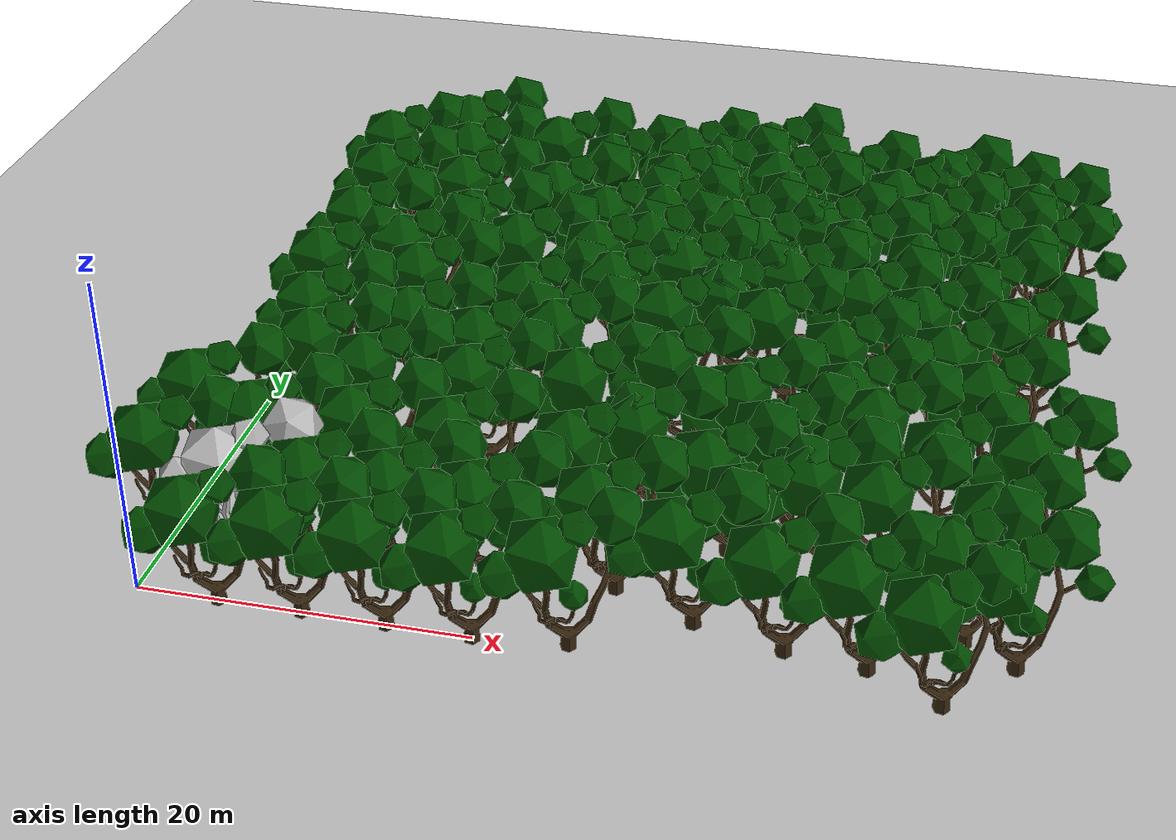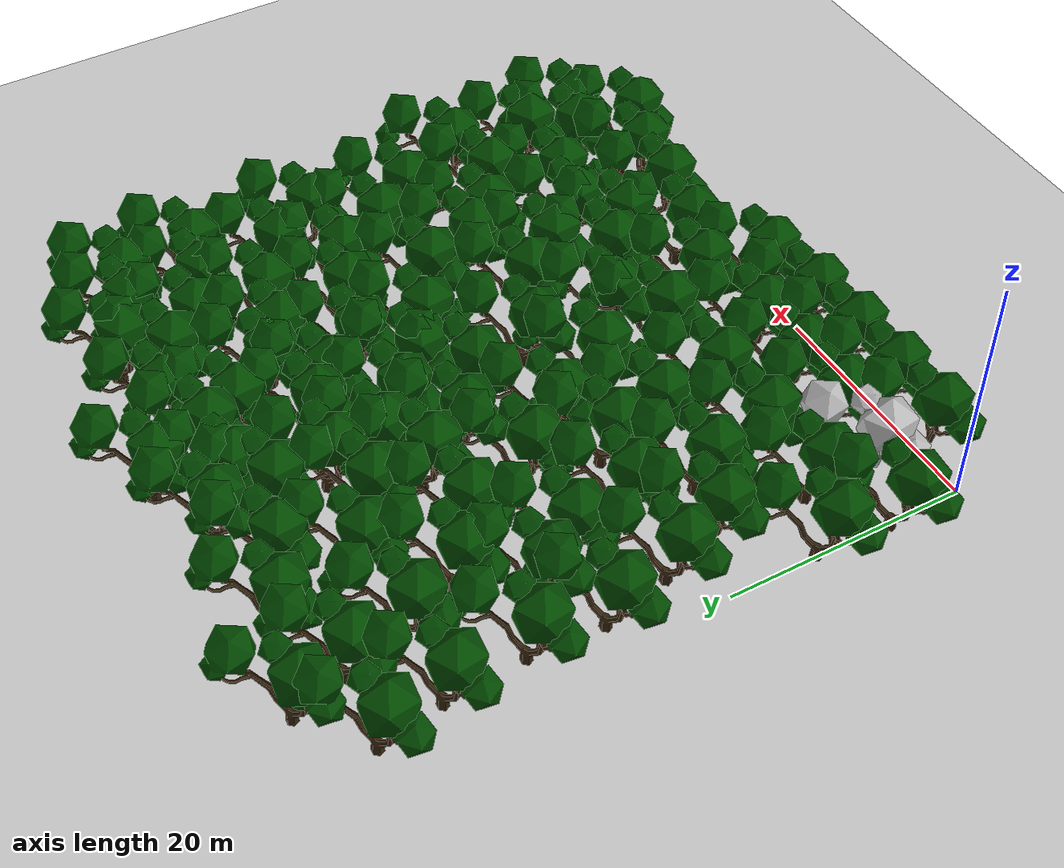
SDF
<sdf version="1.7">
 <world name="default">
  <include><uri>model://ground_plane</uri></include>
  <include><uri>model://sun</uri></include>
  <scene><ambient>0.5 0.5 0.5 0.5</ambient><shadows>0</shadows></scene>
  <model name="tree1">
   <pose>5 0 0 0 -0 0</pose>
   <static>1</static>
   <link name="body">
    <visual name="visual"><geometry><mesh><uri>file://greentree2.dae</uri></mesh></geometry></visual>
   </link>
  </model>
  <model name="tree2">
   <pose>10 0 0 0 -0 0</pose>
   <static>1</static>
   <link name="body">
    <visual name="visual"><geometry><mesh><uri>file://greentree2.dae</uri></mesh></geometry></visual>
   </link>
  </model>
  <model name="tree3">
   <pose>15 0 0 0 -0 0</pose>
   <static>1</static>
   <link name="body">
    <visual name="visual"><geometry><mesh><uri>file://greentree2.dae</uri></mesh></geometry></visual>
   </link>
  </model>
  <model name="tree4">
   <pose>20 0 0 0 -0 0</pose>
   <static>1</static>
   <link name="body">
    <visual name="visual"><geometry><mesh><uri>file://greentree2.dae</uri></mesh></geometry></visual>
   </link>
  </model>
  <model name="tree5">
   <pose>20 5 0 0 -0 0</pose>
   <static>1</static>
   <link name="body">
    <visual name="visual"><geometry><mesh><uri>file://greentree2.dae</uri></mesh></geometry></visual>
   </link>
  </model>
  <model name="tree6">
   <pose>15 5 0 0 -0 0</pose>
   <static>1</static>
   <link name="body">
    <visual name="visual"><geometry><mesh><uri>file://greentree2.dae</uri></mesh></geometry></visual>
   </link>
  </model>
  <model name="tree7">
   <pose>10 5 0 0 -0 0</pose>
   <static>1</static>
   <link name="body">
    <visual name="visual"><geometry><mesh><uri>file://greentree2.dae</uri></mesh></geometry></visual>
   </link>
  </model>
  <model name="tree8">
   <pose>5 5 0 0 -0 0</pose>
   <static>1</static>
   <link name="body">
    <visual name="visual"><geometry><mesh><uri>file://redtree2.dae</uri></mesh></geometry></visual>
   </link>
  </model>
  <gravity>0 0 -9.8</gravity>
  <magnetic_field>6e-06 2.3e-05 -4.2e-05</magnetic_field>
  <atmosphere type="adiabatic"/>
  <physics type="ode">
   <max_step_size>0.001</max_step_size>
   <real_time_factor>1</real_time_factor>
   <real_time_update_rate>1000</real_time_update_rate>
  </physics>
  <scene><ambient>0.4 0.4 0.4 1</ambient><background>0.7 0.7 0.7 1</background><shadows>1</shadows></scene>
  <spherical_coordinates>
   <surface_model>EARTH_WGS84</surface_model>
   <latitude_deg>0</latitude_deg>
   <longitude_deg>0</longitude_deg>
   <elevation>0</elevation>
   <heading_deg>0</heading_deg>
  </spherical_coordinates>
  <model name="tree1_clone">
   <pose>4.97058 10.0834 0 0 -0 0</pose>
   <static>1</static>
   <link name="body">
    <visual name="visual"><geometry><mesh><uri>file://greentree2.dae</uri></mesh></geometry></visual>
   </link>
  </model>
  <model name="tree1_clone_0">
   <pose>-0.170607 6.26084 0 0 -0 0</pose>
   <static>1</static>
   <link name="body">
    <visual name="visual"><geometry><mesh><uri>file://greentree2.dae</uri></mesh></geometry></visual>
   </link>
  </model>
  <model name="tree1_clone_1">
   <pose>0.149939 12.5466 0 0 -0 0</pose>
   <static>1</static>
   <link name="body">
    <visual name="visual"><geometry><mesh><uri>file://greentree2.dae</uri></mesh></geometry></visual>
   </link>
  </model>
  <model name="tree1_clone_2">
   <pose>10.8984 10.9448 0 0 -0 0</pose>
   <static>1</static>
   <link name="body">
    <visual name="visual"><geometry><mesh><uri>file://greentree2.dae</uri></mesh></geometry></visual>
   </link>
  </model>
  <model name="tree1_clone_3">
   <pose>16.7394 11.0248 0 0 -0 0</pose>
   <static>1</static>
   <link name="body">
    <visual name="visual"><geometry><mesh><uri>file://greentree2.dae</uri></mesh></geometry></visual>
   </link>
  </model>
  <model name="tree1_clone_4">
   <pose>9.60075 16.6803 0 0 -0 0</pose>
   <static>1</static>
   <link name="body">
    <visual name="visual"><geometry><mesh><uri>file://greentree2.dae</uri></mesh></geometry></visual>
   </link>
  </model>
  <model name="tree1_clone_5">
   <pose>5.26035 18.7754 0 0 -0 0</pose>
   <static>1</static>
   <link name="body">
    <visual name="visual"><geometry><mesh><uri>file://greentree2.dae</uri></mesh></geometry></visual>
   </link>
  </model>
  <model name="tree1_clone_6">
   <pose>3.54848 23.077 0 0 -0 0</pose>
   <static>1</static>
   <link name="body">
    <visual name="visual"><geometry><mesh><uri>file://greentree2.dae</uri></mesh></geometry></visual>
   </link>
  </model>
  <model name="tree1_clone_7">
   <pose>16.0641 16.8479 0 0 -0 0</pose>
   <static>1</static>
   <link name="body">
    <visual name="visual"><geometry><mesh><uri>file://greentree2.dae</uri></mesh></geometry></visual>
   </link>
  </model>
  <model name="tree1_clone_8">
   <pose>2.13951 28.8957 0 0 -0 0</pose>
   <static>1</static>
   <link name="body">
    <visual name="visual"><geometry><mesh><uri>file://greentree2.dae</uri></mesh></geometry></visual>
   </link>
  </model>
  <model name="tree1_clone_9">
   <pose>10.4264 22.7347 0 0 -0 0</pose>
   <static>1</static>
   <link name="body">
    <visual name="visual"><geometry><mesh><uri>file://greentree2.dae</uri></mesh></geometry></visual>
   </link>
  </model>
  <model name="tree1_clone_10">
   <pose>9.14659 28.3415 0 0 -0 0</pose>
   <static>1</static>
   <link name="body">
    <visual name="visual"><geometry><mesh><uri>file://greentree2.dae</uri></mesh></geometry></visual>
   </link>
  </model>
  <model name="tree1_clone_11">
   <pose>6.80077 31.8278 0 0 -0 0</pose>
   <static>1</static>
   <link name="body">
    <visual name="visual"><geometry><mesh><uri>file://greentree2.dae</uri></mesh></geometry></visual>
   </link>
  </model>
  <model name="tree1_clone_12">
   <pose>2.414 35.0456 0 0 -0 0</pose>
   <static>1</static>
   <link name="body">
    <visual name="visual"><geometry><mesh><uri>file://greentree2.dae</uri></mesh></geometry></visual>
   </link>
  </model>
  <model name="tree1_clone_13">
   <pose>1.90406 41.7414 0 0 -0 0</pose>
   <static>1</static>
   <link name="body">
    <visual name="visual"><geometry><mesh><uri>file://greentree2.dae</uri></mesh></geometry></visual>
   </link>
  </model>
  <model name="tree1_clone_14">
   <pose>0.888442 47.1048 0 0 -0 0</pose>
   <static>1</static>
   <link name="body">
    <visual name="visual"><geometry><mesh><uri>file://greentree2.dae</uri></mesh></geometry></visual>
   </link>
  </model>
  <model name="tree1_clone_15">
   <pose>7.08211 46.5309 0 0 -0 0</pose>
   <static>1</static>
   <link name="body">
    <visual name="visual"><geometry><mesh><uri>file://greentree2.dae</uri></mesh></geometry></visual>
   </link>
  </model>
  <model name="tree1_clone_16">
   <pose>5.71332 50.9796 0 0 -0 0</pose>
   <static>1</static>
   <link name="body">
    <visual name="visual"><geometry><mesh><uri>file://greentree2.dae</uri></mesh></geometry></visual>
   </link>
  </model>
  <model name="tree1_clone_17">
   <pose>13.143 48.8653 0 0 -0 0</pose>
   <static>1</static>
   <link name="body">
    <visual name="visual"><geometry><mesh><uri>file://greentree2.dae</uri></mesh></geometry></visual>
   </link>
  </model>
  <model name="tree1_clone_18">
   <pose>8.20658 41.2803 0 0 -0 0</pose>
   <static>1</static>
   <link name="body">
    <visual name="visual"><geometry><mesh><uri>file://greentree2.dae</uri></mesh></geometry></visual>
   </link>
  </model>
  <model name="tree1_clone_19">
   <pose>10.3281 36.4085 0 0 -0 0</pose>
   <static>1</static>
   <link name="body">
    <visual name="visual"><geometry><mesh><uri>file://greentree2.dae</uri></mesh></geometry></visual>
   </link>
  </model>
  <model name="tree1_clone_20">
   <pose>14.8173 41.757 0 0 -0 0</pose>
   <static>1</static>
   <link name="body">
    <visual name="visual"><geometry><mesh><uri>file://greentree2.dae</uri></mesh></geometry></visual>
   </link>
  </model>
  <model name="tree1_clone_21">
   <pose>17.6678 46.9409 0 0 -0 0</pose>
   <static>1</static>
   <link name="body">
    <visual name="visual"><geometry><mesh><uri>file://greentree2.dae</uri></mesh></geometry></visual>
   </link>
  </model>
  <model name="tree1_clone_22">
   <pose>22.5769 44.8345 0 0 -0 0</pose>
   <static>1</static>
   <link name="body">
    <visual name="visual"><geometry><mesh><uri>file://greentree2.dae</uri></mesh></geometry></visual>
   </link>
  </model>
  <model name="tree1_clone_23">
   <pose>19.0946 38.9246 0 0 -0 0</pose>
   <static>1</static>
   <link name="body">
    <visual name="visual"><geometry><mesh><uri>file://greentree2.dae</uri></mesh></geometry></visual>
   </link>
  </model>
  <model name="tree1_clone_24">
   <pose>14.3881 33.7415 0 0 -0 0</pose>
   <static>1</static>
   <link name="body">
    <visual name="visual"><geometry><mesh><uri>file://greentree2.dae</uri></mesh></geometry></visual>
   </link>
  </model>
  <model name="tree1_clone_25">
   <pose>16.6709 27.3627 0 0 -0 0</pose>
   <static>1</static>
   <link name="body">
    <visual name="visual"><geometry><mesh><uri>file://greentree2.dae</uri></mesh></geometry></visual>
   </link>
  </model>
  <model name="tree1_clone_26">
   <pose>19.7767 23.2831 0 0 -0 0</pose>
   <static>1</static>
   <link name="body">
    <visual name="visual"><geometry><mesh><uri>file://greentree2.dae</uri></mesh></geometry></visual>
   </link>
  </model>
  <model name="tree1_clone_27">
   <pose>22.6013 17.9037 0 0 -0 0</pose>
   <static>1</static>
   <link name="body">
    <visual name="visual"><geometry><mesh><uri>file://greentree2.dae</uri></mesh></geometry></visual>
   </link>
  </model>
  <model name="tree1_clone_28">
   <pose>23.971 11.1482 0 0 -0 0</pose>
   <static>1</static>
   <link name="body">
    <visual name="visual"><geometry><mesh><uri>file://greentree2.dae</uri></mesh></geometry></visual>
   </link>
  </model>
  <model name="tree1_clone_29">
   <pose>26.6931 6.03393 0 0 -0 0</pose>
   <static>1</static>
   <link name="body">
    <visual name="visual"><geometry><mesh><uri>file://greentree2.dae</uri></mesh></geometry></visual>
   </link>
  </model>
  <model name="tree1_clone_30">
   <pose>31.654 3.97702 0 0 -0 0</pose>
   <static>1</static>
   <link name="body">
    <visual name="visual"><geometry><mesh><uri>file://greentree2.dae</uri></mesh></geometry></visual>
   </link>
  </model>
  <model name="tree1_clone_31">
   <pose>34.7623 8.06815 0 0 -0 0</pose>
   <static>1</static>
   <link name="body">
    <visual name="visual"><geometry><mesh><uri>file://greentree2.dae</uri></mesh></geometry></visual>
   </link>
  </model>
  <model name="tree1_clone_32">
   <pose>32.1537 10.9598 0 0 -0 0</pose>
   <static>1</static>
   <link name="body">
    <visual name="visual"><geometry><mesh><uri>file://greentree2.dae</uri></mesh></geometry></visual>
   </link>
  </model>
  <model name="tree1_clone_33">
   <pose>27.3334 13.8358 0 0 -0 0</pose>
   <static>1</static>
   <link name="body">
    <visual name="visual"><geometry><mesh><uri>file://greentree2.dae</uri></mesh></geometry></visual>
   </link>
  </model>
  <model name="tree1_clone_34">
   <pose>25.3691 0.598217 0 0 -0 0</pose>
   <static>1</static>
   <link name="body">
    <visual name="visual"><geometry><mesh><uri>file://greentree2.dae</uri></mesh></geometry></visual>
   </link>
  </model>
  <model name="tree1_clone_35">
   <pose>37.0037 2.69911 0 0 -0 0</pose>
   <static>1</static>
   <link name="body">
    <visual name="visual"><geometry><mesh><uri>file://greentree2.dae</uri></mesh></geometry></visual>
   </link>
  </model>
  <model name="tree1_clone_36">
   <pose>41.6761 2.17975 0 0 -0 0</pose>
   <static>1</static>
   <link name="body">
    <visual name="visual"><geometry><mesh><uri>file://greentree2.dae</uri></mesh></geometry></visual>
   </link>
  </model>
  <model name="tree1_clone_37">
   <pose>45.963 0.112616 0 0 -0 0</pose>
   <static>1</static>
   <link name="body">
    <visual name="visual"><geometry><mesh><uri>file://greentree2.dae</uri></mesh></geometry></visual>
   </link>
  </model>
  <model name="tree1_clone_38">
   <pose>49.5401 4.07282 0 0 -0 0</pose>
   <static>1</static>
   <link name="body">
    <visual name="visual"><geometry><mesh><uri>file://greentree2.dae</uri></mesh></geometry></visual>
   </link>
  </model>
  <model name="tree1_clone_39">
   <pose>46.5316 5.6922 0 0 -0 0</pose>
   <static>1</static>
   <link name="body">
    <visual name="visual"><geometry><mesh><uri>file://greentree2.dae</uri></mesh></geometry></visual>
   </link>
  </model>
  <model name="tree1_clone_40">
   <pose>48.4664 9.33124 0 0 -0 0</pose>
   <static>1</static>
   <link name="body">
    <visual name="visual"><geometry><mesh><uri>file://greentree2.dae</uri></mesh></geometry></visual>
   </link>
  </model>
  <model name="tree1_clone_41">
   <pose>42.156 9.90275 0 0 -0 0</pose>
   <static>1</static>
   <link name="body">
    <visual name="visual"><geometry><mesh><uri>file://greentree2.dae</uri></mesh></geometry></visual>
   </link>
  </model>
  <model name="tree1_clone_42">
   <pose>45 15 0 0 -0 0</pose>
   <static>1</static>
   <link name="body">
    <visual name="visual"><geometry><mesh><uri>file://greentree2.dae</uri></mesh></geometry></visual>
   </link>
  </model>
  <model name="tree1_clone_43">
   <pose>38.0182 10.7539 0 0 -0 0</pose>
   <static>1</static>
   <link name="body">
    <visual name="visual"><geometry><mesh><uri>file://greentree2.dae</uri></mesh></geometry></visual>
   </link>
  </model>
  <model name="tree1_clone_44">
   <pose>35.0254 14.8787 0 0 -0 0</pose>
   <static>1</static>
   <link name="body">
    <visual name="visual"><geometry><mesh><uri>file://greentree2.dae</uri></mesh></geometry></visual>
   </link>
  </model>
  <model name="tree1_clone_45">
   <pose>40.8677 17.5417 0 0 -0 0</pose>
   <static>1</static>
   <link name="body">
    <visual name="visual"><geometry><mesh><uri>file://greentree2.dae</uri></mesh></geometry></visual>
   </link>
  </model>
  <model name="tree1_clone_46">
   <pose>46.7893 21.9449 0 0 -0 0</pose>
   <static>1</static>
   <link name="body">
    <visual name="visual"><geometry><mesh><uri>file://greentree2.dae</uri></mesh></geometry></visual>
   </link>
  </model>
  <model name="tree1_clone_47">
   <pose>49.914 15.7965 0 0 -0 0</pose>
   <static>1</static>
   <link name="body">
    <visual name="visual"><geometry><mesh><uri>file://greentree2.dae</uri></mesh></geometry></visual>
   </link>
  </model>
  <model name="tree1_clone_48">
   <pose>32.5782 18.4686 0 0 -0 0</pose>
   <static>1</static>
   <link name="body">
    <visual name="visual"><geometry><mesh><uri>file://greentree2.dae</uri></mesh></geometry></visual>
   </link>
  </model>
  <model name="tree1_clone_49">
   <pose>27.46 21 0 0 -0 0</pose>
   <static>1</static>
   <link name="body">
    <visual name="visual"><geometry><mesh><uri>file://greentree2.dae</uri></mesh></geometry></visual>
   </link>
  </model>
  <model name="tree1_clone_50">
   <pose>38.8796 20.0325 0 0 -0 0</pose>
   <static>1</static>
   <link name="body">
    <visual name="visual"><geometry><mesh><uri>file://greentree2.dae</uri></mesh></geometry></visual>
   </link>
  </model>
  <model name="tree1_clone_51">
   <pose>44.1192 25.6028 0 0 -0 0</pose>
   <static>1</static>
   <link name="body">
    <visual name="visual"><geometry><mesh><uri>file://greentree2.dae</uri></mesh></geometry></visual>
   </link>
  </model>
  <model name="tree1_clone_52">
   <pose>48 30 0 0 -0 0</pose>
   <static>1</static>
   <link name="body">
    <visual name="visual"><geometry><mesh><uri>file://greentree2.dae</uri></mesh></geometry></visual>
   </link>
  </model>
  <model name="tree1_clone_53">
   <pose>37.429 24.6567 0 0 -0 0</pose>
   <static>1</static>
   <link name="body">
    <visual name="visual"><geometry><mesh><uri>file://greentree2.dae</uri></mesh></geometry></visual>
   </link>
  </model>
  <model name="tree1_clone_54">
   <pose>42 30 0 0 -0 0</pose>
   <static>1</static>
   <link name="body">
    <visual name="visual"><geometry><mesh><uri>file://greentree2.dae</uri></mesh></geometry></visual>
   </link>
  </model>
  <model name="tree1_clone_55">
   <pose>45.3518 34.0362 0 0 -0 0</pose>
   <static>1</static>
   <link name="body">
    <visual name="visual"><geometry><mesh><uri>file://greentree2.dae</uri></mesh></geometry></visual>
   </link>
  </model>
  <model name="tree1_clone_56">
   <pose>48.5701 40 0 0 -0 0</pose>
   <static>1</static>
   <link name="body">
    <visual name="visual"><geometry><mesh><uri>file://greentree2.dae</uri></mesh></geometry></visual>
   </link>
  </model>
  <model name="tree1_clone_57">
   <pose>32.5389 27.6147 0 0 -0 0</pose>
   <static>1</static>
   <link name="body">
    <visual name="visual"><geometry><mesh><uri>file://greentree2.dae</uri></mesh></geometry></visual>
   </link>
  </model>
  <model name="tree1_clone_58">
   <pose>38 31.5378 0 0 -0 0</pose>
   <static>1</static>
   <link name="body">
    <visual name="visual"><geometry><mesh><uri>file://greentree2.dae</uri></mesh></geometry></visual>
   </link>
  </model>
  <model name="tree1_clone_59">
   <pose>41 37 0 0 -0 0</pose>
   <static>1</static>
   <link name="body">
    <visual name="visual"><geometry><mesh><uri>file://greentree2.dae</uri></mesh></geometry></visual>
   </link>
  </model>
  <model name="tree1_clone_60">
   <pose>44.7546 40.9277 0 0 -0 0</pose>
   <static>1</static>
   <link name="body">
    <visual name="visual"><geometry><mesh><uri>file://greentree2.dae</uri></mesh></geometry></visual>
   </link>
  </model>
  <model name="tree1_clone_61">
   <pose>48 46 0 0 -0 0</pose>
   <static>1</static>
   <link name="body">
    <visual name="visual"><geometry><mesh><uri>file://greentree2.dae</uri></mesh></geometry></visual>
   </link>
  </model>
  <model name="tree1_clone_62">
   <pose>25.9532 26.969 0 0 -0 0</pose>
   <static>1</static>
   <link name="body">
    <visual name="visual"><geometry><mesh><uri>file://greentree2.dae</uri></mesh></geometry></visual>
   </link>
  </model>
  <model name="tree1_clone_63">
   <pose>29 30 0 0 -0 0</pose>
   <static>1</static>
   <link name="body">
    <visual name="visual"><geometry><mesh><uri>file://greentree2.dae</uri></mesh></geometry></visual>
   </link>
  </model>
  <model name="tree1_clone_64">
   <pose>33 33 0 0 -0 0</pose>
   <static>1</static>
   <link name="body">
    <visual name="visual"><geometry><mesh><uri>file://greentree2.dae</uri></mesh></geometry></visual>
   </link>
  </model>
  <model name="tree1_clone_65">
   <pose>36.4626 38 0 0 -0 0</pose>
   <static>1</static>
   <link name="body">
    <visual name="visual"><geometry><mesh><uri>file://greentree2.dae</uri></mesh></geometry></visual>
   </link>
  </model>
  <model name="tree1_clone_66">
   <pose>41 43 0 0 -0 0</pose>
   <static>1</static>
   <link name="body">
    <visual name="visual"><geometry><mesh><uri>file://greentree2.dae</uri></mesh></geometry></visual>
   </link>
  </model>
  <model name="tree1_clone_67">
   <pose>44.54 47 0 0 -0 0</pose>
   <static>1</static>
   <link name="body">
    <visual name="visual"><geometry><mesh><uri>file://greentree2.dae</uri></mesh></geometry></visual>
   </link>
  </model>
  <model name="tree1_clone_68">
   <pose>21.7879 30.0341 0 0 -0 0</pose>
   <static>1</static>
   <link name="body">
    <visual name="visual"><geometry><mesh><uri>file://greentree2.dae</uri></mesh></geometry></visual>
   </link>
  </model>
  <model name="tree1_clone_69">
   <pose>26 33 0 0 -0 0</pose>
   <static>1</static>
   <link name="body">
    <visual name="visual"><geometry><mesh><uri>file://greentree2.dae</uri></mesh></geometry></visual>
   </link>
  </model>
  <model name="tree1_clone_70">
   <pose>30.2361 36.8017 0 0 -0 0</pose>
   <static>1</static>
   <link name="body">
    <visual name="visual"><geometry><mesh><uri>file://greentree2.dae</uri></mesh></geometry></visual>
   </link>
  </model>
  <model name="tree1_clone_71">
   <pose>34 40 0 0 -0 0</pose>
   <static>1</static>
   <link name="body">
    <visual name="visual"><geometry><mesh><uri>file://greentree2.dae</uri></mesh></geometry></visual>
   </link>
  </model>
  <model name="tree1_clone_72">
   <pose>38.3668 45.9601 0 0 -0 0</pose>
   <static>1</static>
   <link name="body">
    <visual name="visual"><geometry><mesh><uri>file://greentree2.dae</uri></mesh></geometry></visual>
   </link>
  </model>
  <model name="tree1_clone_73">
   <pose>41 49 0 0 -0 0</pose>
   <static>1</static>
   <link name="body">
    <visual name="visual"><geometry><mesh><uri>file://greentree2.dae</uri></mesh></geometry></visual>
   </link>
  </model>
  <model name="tree1_clone_74">
   <pose>19.6836 33.9014 0 0 -0 0</pose>
   <static>1</static>
   <link name="body">
    <visual name="visual"><geometry><mesh><uri>file://greentree2.dae</uri></mesh></geometry></visual>
   </link>
  </model>
  <model name="tree1_clone_75">
   <pose>23 36 0 0 -0 0</pose>
   <static>1</static>
   <link name="body">
    <visual name="visual"><geometry><mesh><uri>file://greentree2.dae</uri></mesh></geometry></visual>
   </link>
  </model>
  <model name="tree1_clone_76">
   <pose>23 40 0 0 -0 0</pose>
   <static>1</static>
   <link name="body">
    <visual name="visual"><geometry><mesh><uri>file://greentree2.dae</uri></mesh></geometry></visual>
   </link>
  </model>
  <model name="tree1_clone_77">
   <pose>28 39 0 0 -0 0</pose>
   <static>1</static>
   <link name="body">
    <visual name="visual"><geometry><mesh><uri>file://greentree2.dae</uri></mesh></geometry></visual>
   </link>
  </model>
  <model name="tree1_clone_78">
   <pose>31 44 0 0 -0 0</pose>
   <static>1</static>
   <link name="body">
    <visual name="visual"><geometry><mesh><uri>file://greentree2.dae</uri></mesh></geometry></visual>
   </link>
  </model>
  <model name="tree1_clone_79">
   <pose>25.2495 46.83 0 0 -0 0</pose>
   <static>1</static>
   <link name="body">
    <visual name="visual"><geometry><mesh><uri>file://greentree2.dae</uri></mesh></geometry></visual>
   </link>
  </model>
  <model name="tree1_clone_80">
   <pose>29.6734 46.7763 0 0 -0 0</pose>
   <static>1</static>
   <link name="body">
    <visual name="visual"><geometry><mesh><uri>file://greentree2.dae</uri></mesh></geometry></visual>
   </link>
  </model>
  <model name="tree1_clone_81">
   <pose>34.4696 48.1767 0 0 -0 0</pose>
   <static>1</static>
   <link name="body">
    <visual name="visual"><geometry><mesh><uri>file://greentree2.dae</uri></mesh></geometry></visual>
   </link>
  </model>
  <model name="tree1_clone_82">
   <pose>22.5396 49.377 0 0 -0 0</pose>
   <static>1</static>
   <link name="body">
    <visual name="visual"><geometry><mesh><uri>file://greentree2.dae</uri></mesh></geometry></visual>
   </link>
  </model>
  <model name="tree1_clone_83">
   <pose>28.3876 51.4341 0 0 -0 0</pose>
   <static>1</static>
   <link name="body">
    <visual name="visual"><geometry><mesh><uri>file://greentree2.dae</uri></mesh></geometry></visual>
   </link>
  </model>
  <model name="tree1_clone_84">
   <pose>15.2943 21.2681 0 0 -0 0</pose>
   <static>1</static>
   <link name="body">
    <visual name="visual"><geometry><mesh><uri>file://greentree2.dae</uri></mesh></geometry></visual>
   </link>
  </model>
 </world>
</sdf>
